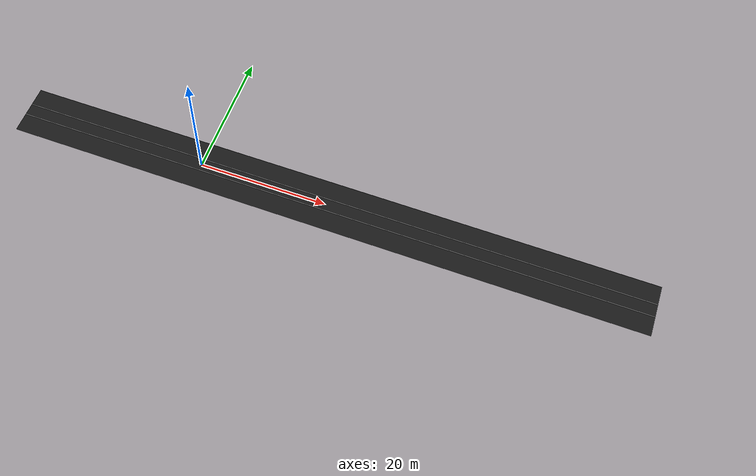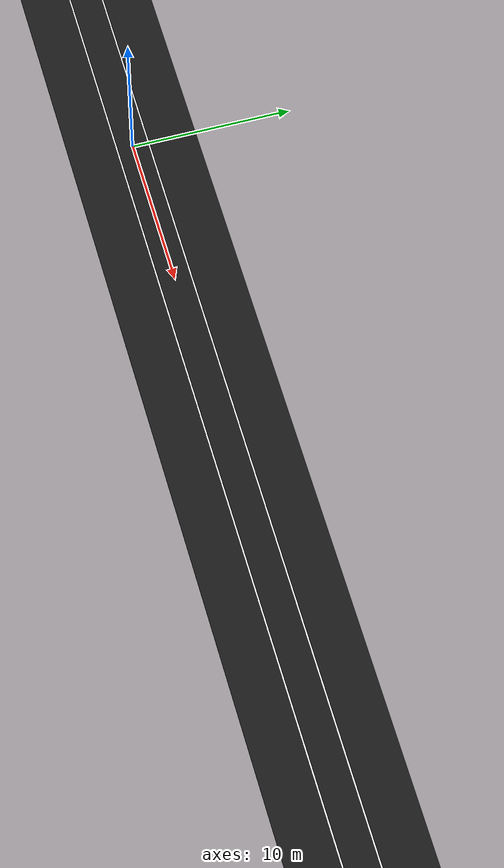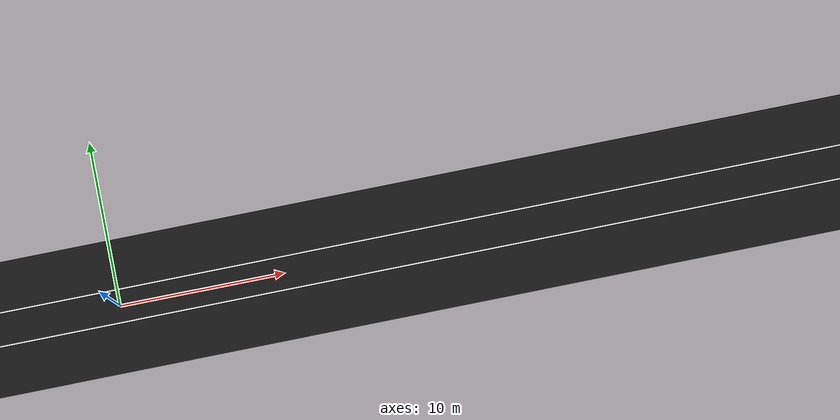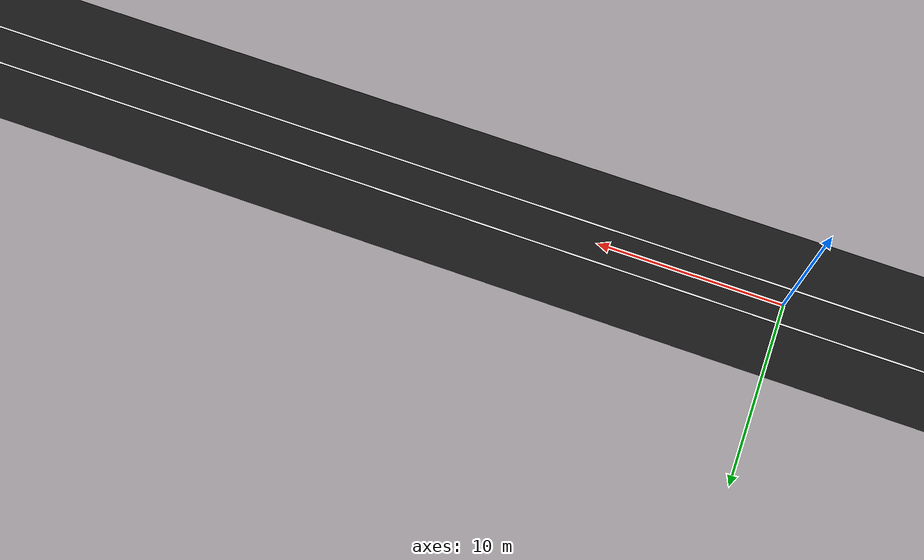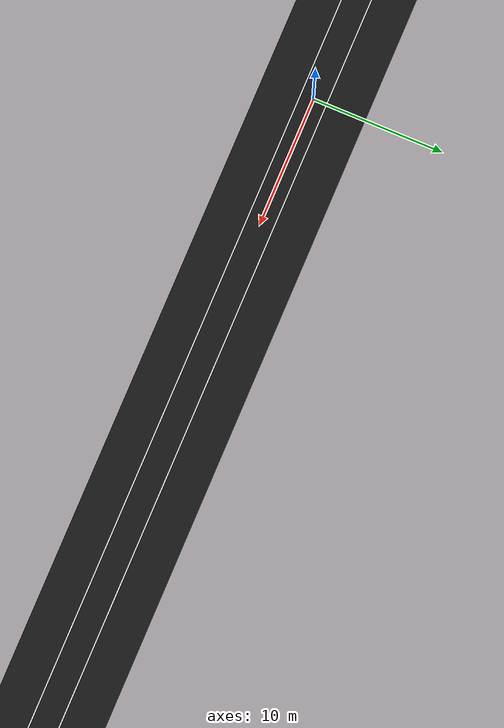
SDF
<?xml version="1.0" ?>
<sdf version="1.7">
  <world name="synthetic_road_world">
    <!-- A global light source -->
    <include>
      <uri>model://sun</uri>
    </include>

    <!-- A ground plane -->
    <include>
      <uri>model://ground_plane</uri>
    </include>

    <!-- Synthetic Road: Dark Grey Plane -->
    <model name="road">
      <static>true</static>
      <link name="link">
        <pose>20 0 0.001 0 0 0</pose>
        <visual name="visual">
          <geometry>
            <plane>
              <normal>0 0 1</normal>
              <size>100 8</size>
            </plane>
          </geometry>
          <material>
            <ambient>0.1 0.1 0.1 1</ambient>
            <diffuse>0.1 0.1 0.1 1</diffuse>
            <specular>0 0 0 1</specular>
            <emissive>0 0 0 1</emissive>
          </material>
        </visual>
      </link>
    </model>

    <!-- Left Lane Line: White -->
    <model name="left_lane">
      <static>true</static>
      <link name="link">
        <pose>20 1 0.002 0 0 0</pose>
        <visual name="visual">
          <geometry>
            <plane>
              <normal>0 0 1</normal>
              <size>100 0.1</size>
            </plane>
          </geometry>
          <material>
            <ambient>1 1 1 1</ambient>
            <diffuse>1 1 1 1</diffuse>
          </material>
        </visual>
      </link>
    </model>

    <!-- Right Lane Line: White -->
    <model name="right_lane">
      <static>true</static>
      <link name="link">
        <pose>20 -1 0.002 0 0 0</pose>
        <visual name="visual">
          <geometry>
            <plane>
              <normal>0 0 1</normal>
              <size>100 0.1</size>
            </plane>
          </geometry>
          <material>
            <ambient>1 1 1 1</ambient>
            <diffuse>1 1 1 1</diffuse>
          </material>
        </visual>
      </link>
    </model>

    <physics type="ode">
      <real_time_update_rate>1000.0</real_time_update_rate>
      <max_step_size>0.001</max_step_size>
      <real_time_factor>1</real_time_factor>
      <ode>
        <solver>
          <type>quick</type>
          <iters>150</iters>
          <precon_iters>0</precon_iters>
          <sor>1.400000</sor>
          <use_dynamic_moi_rescaling>1</use_dynamic_moi_rescaling>
        </solver>
        <constraints>
          <cfm>0.00001</cfm>
          <erp>0.2</erp>
          <contact_max_correcting_vel>2000.000000</contact_max_correcting_vel>
          <contact_surface_layer>0.01000</contact_surface_layer>
        </constraints>
      </ode>
    </physics>

    <scene>
      <ambient>0.4 0.4 0.4 1</ambient>
      <background>0.7 0.7 0.7 1</background>
      <shadows>true</shadows>
    </scene>

    <gui fullscreen='0'>
      <camera name='user_camera'>
        <pose>-5.0 0 5.0 0 0.5 0</pose>
        <view_controller>orbit</view_controller>
      </camera>
    </gui>
  </world>
</sdf>
